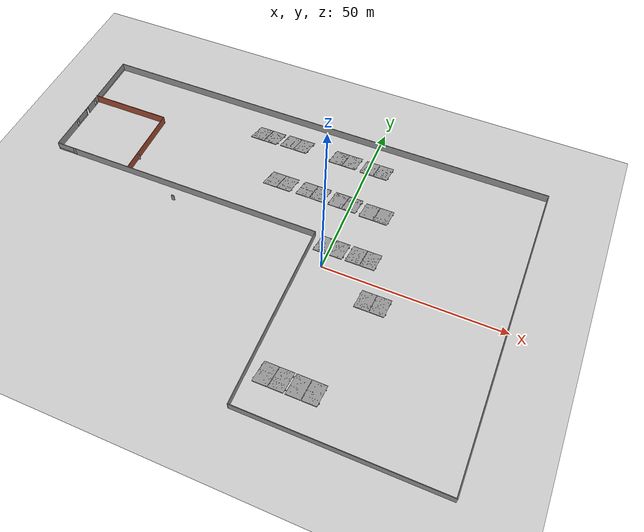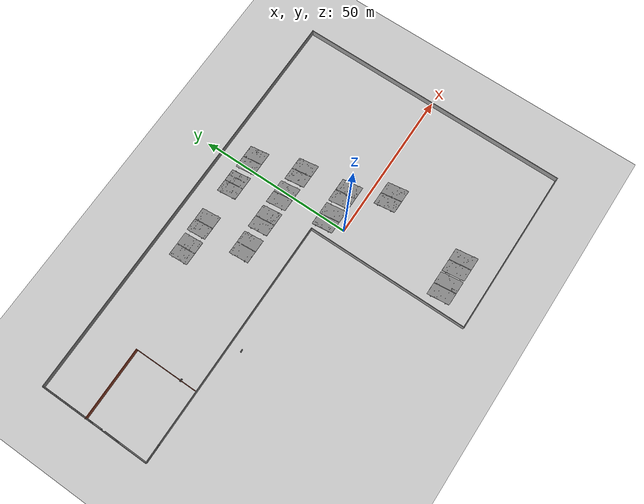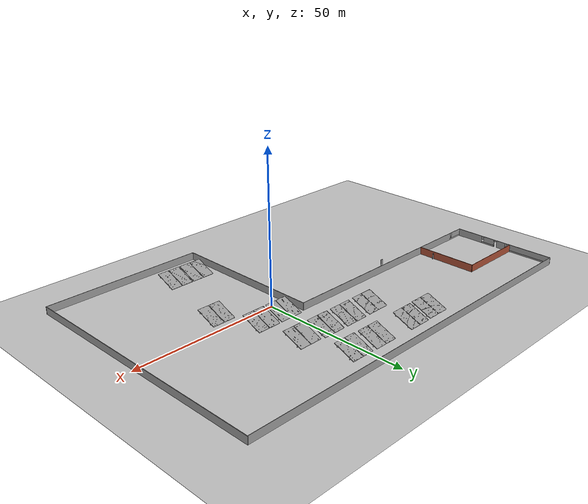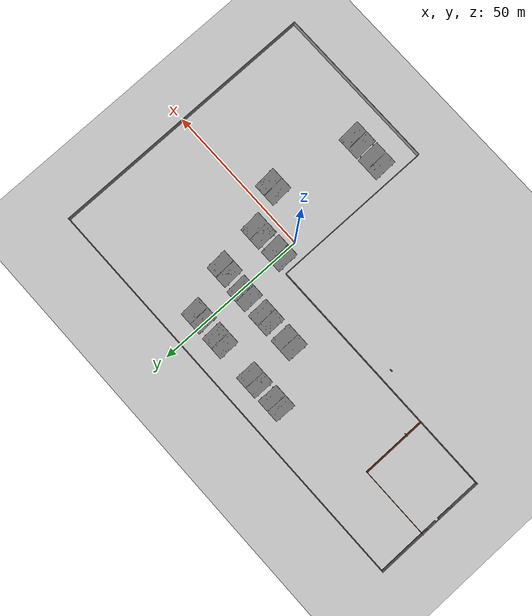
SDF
<sdf version="1.7">
 <world name="default">
  <model name="ground_plane">
   <static>1</static>
   <link name="link">
    <collision name="collision">
     <geometry><plane><normal>0 0 1</normal><size>100 100</size></plane></geometry>
     <surface>
      <contact><collide_bitmask>65535</collide_bitmask></contact>
      <friction><ode><mu>100</mu><mu2>50</mu2></ode></friction>
     </surface>
    </collision>
    <visual name="visual">
     <cast_shadows>0</cast_shadows>
     <geometry><plane><normal>0 0 1</normal><size>100 100</size></plane></geometry>
     <material>
      <script><uri>file://media/materials/scripts/gazebo.material</uri><name>Gazebo/Grey</name></script>
     </material>
    </visual>
   </link>
  </model>
  <model name="panelv4">
   <link name="link_0">
    <inertial>
     <mass>1</mass>
     <inertia>
      <ixx>0.166667</ixx>
      <ixy>0</ixy>
      <ixz>0</ixz>
      <iyy>0.166667</iyy>
      <iyz>0</iyz>
      <izz>0.166667</izz>
     </inertia>
    </inertial>
    <pose>0 -0 0 -0.398224 0 0</pose>
    <gravity>0</gravity>
    <visual name="visual">
     <geometry><mesh><uri>model://Panel/panelsolar.obj</uri><scale>0.05 0.05 0.05</scale></mesh></geometry>
     <material>
      <lighting>1</lighting>
      <script><uri>file://media/materials/scripts/gazebo.material</uri><name>Gazebo/Grey</name></script>
      <shader type="pixel"><normal_map>__default__</normal_map></shader>
      <ambient>0.3 0.3 0.3 1</ambient>
      <diffuse>0.7 0.7 0.7 1</diffuse>
      <specular>0.01 0.01 0.01 1</specular>
      <emissive>0 0 0 1</emissive>
     </material>
    </visual>
    <collision name="collision">
     <geometry><mesh><uri>model://Panel/panelsolar.obj</uri><scale>0.05 0.05 0.05</scale></mesh></geometry>
     <surface>
      <friction>
       <ode><mu>1</mu><mu2>1</mu2><fdir1>0 0 0</fdir1><slip1>0</slip1><slip2>0</slip2></ode>
       <torsional>
        <coefficient>1</coefficient>
        <patch_radius>0</patch_radius>
        <surface_radius>0</surface_radius>
        <use_patch_radius>1</use_patch_radius>
        <ode><slip>0</slip></ode>
       </torsional>
      </friction>
      <bounce><restitution_coefficient>0</restitution_coefficient><threshold>1e+06</threshold></bounce>
      <contact>
       <collide_without_contact>0</collide_without_contact>
       <collide_without_contact_bitmask>1</collide_without_contact_bitmask>
       <collide_bitmask>1</collide_bitmask>
       <ode>
        <soft_cfm>0</soft_cfm>
        <soft_erp>0.2</soft_erp>
        <kp>1e+13</kp>
        <kd>1</kd>
        <max_vel>0.01</max_vel>
        <min_depth>0</min_depth>
       </ode>
       <bullet>
        <split_impulse>1</split_impulse>
        <split_impulse_penetration_threshold>-0.01</split_impulse_penetration_threshold>
        <soft_cfm>0</soft_cfm>
        <soft_erp>0.2</soft_erp>
        <kp>1e+13</kp>
        <kd>1</kd>
       </bullet>
      </contact>
     </surface>
    </collision>
   </link>
   <static>1</static>
   <pose>9.55531 -34.0627 1.99863 0 -0 0</pose>
  </model>
  <model name="panelv4_clone_6">
   <link name="link_0">
    <inertial>
     <mass>1</mass>
     <inertia>
      <ixx>0.166667</ixx>
      <ixy>0</ixy>
      <ixz>0</ixz>
      <iyy>0.166667</iyy>
      <iyz>0</iyz>
      <izz>0.166667</izz>
     </inertia>
    </inertial>
    <pose>0 -0 0 -0.398224 0 0</pose>
    <gravity>0</gravity>
    <visual name="visual">
     <geometry><mesh><uri>model://Panel/panelsolar.obj</uri><scale>0.05 0.05 0.05</scale></mesh></geometry>
     <material>
      <lighting>1</lighting>
      <script><uri>file://media/materials/scripts/gazebo.material</uri><name>Gazebo/Grey</name></script>
      <shader type="pixel"><normal_map>__default__</normal_map></shader>
      <ambient>0.3 0.3 0.3 1</ambient>
      <diffuse>0.7 0.7 0.7 1</diffuse>
      <specular>0.01 0.01 0.01 1</specular>
      <emissive>0 0 0 1</emissive>
     </material>
    </visual>
    <collision name="collision">
     <geometry><mesh><uri>model://Panel/panelsolar.obj</uri><scale>0.05 0.05 0.05</scale></mesh></geometry>
     <surface>
      <friction>
       <ode><mu>1</mu><mu2>1</mu2><fdir1>0 0 0</fdir1><slip1>0</slip1><slip2>0</slip2></ode>
       <torsional>
        <coefficient>1</coefficient>
        <patch_radius>0</patch_radius>
        <surface_radius>0</surface_radius>
        <use_patch_radius>1</use_patch_radius>
        <ode><slip>0</slip></ode>
       </torsional>
      </friction>
      <bounce><restitution_coefficient>0</restitution_coefficient><threshold>1e+06</threshold></bounce>
      <contact>
       <collide_without_contact>0</collide_without_contact>
       <collide_without_contact_bitmask>1</collide_without_contact_bitmask>
       <collide_bitmask>1</collide_bitmask>
       <ode>
        <soft_cfm>0</soft_cfm>
        <soft_erp>0.2</soft_erp>
        <kp>1e+13</kp>
        <kd>1</kd>
        <max_vel>0.01</max_vel>
        <min_depth>0</min_depth>
       </ode>
       <bullet>
        <split_impulse>1</split_impulse>
        <split_impulse_penetration_threshold>-0.01</split_impulse_penetration_threshold>
        <soft_cfm>0</soft_cfm>
        <soft_erp>0.2</soft_erp>
        <kp>1e+13</kp>
        <kd>1</kd>
       </bullet>
      </contact>
     </surface>
    </collision>
   </link>
   <static>1</static>
   <pose>15.7973 -6.29418 1.99863 0 -0 0</pose>
  </model>
  <model name="panelv4_clone_11">
   <link name="link_0">
    <inertial>
     <mass>1</mass>
     <inertia>
      <ixx>0.166667</ixx>
      <ixy>0</ixy>
      <ixz>0</ixz>
      <iyy>0.166667</iyy>
      <iyz>0</iyz>
      <izz>0.166667</izz>
     </inertia>
    </inertial>
    <pose>0 -0 0 -0.398224 0 0</pose>
    <gravity>0</gravity>
    <visual name="visual">
     <geometry><mesh><uri>model://Panel/panelsolar.obj</uri><scale>0.05 0.05 0.05</scale></mesh></geometry>
     <material>
      <lighting>1</lighting>
      <script><uri>file://media/materials/scripts/gazebo.material</uri><name>Gazebo/Grey</name></script>
      <shader type="pixel"><normal_map>__default__</normal_map></shader>
      <ambient>0.3 0.3 0.3 1</ambient>
      <diffuse>0.7 0.7 0.7 1</diffuse>
      <specular>0.01 0.01 0.01 1</specular>
      <emissive>0 0 0 1</emissive>
     </material>
    </visual>
    <collision name="collision">
     <geometry><mesh><uri>model://Panel/panelsolar.obj</uri><scale>0.05 0.05 0.05</scale></mesh></geometry>
     <surface>
      <friction>
       <ode><mu>1</mu><mu2>1</mu2><fdir1>0 0 0</fdir1><slip1>0</slip1><slip2>0</slip2></ode>
       <torsional>
        <coefficient>1</coefficient>
        <patch_radius>0</patch_radius>
        <surface_radius>0</surface_radius>
        <use_patch_radius>1</use_patch_radius>
        <ode><slip>0</slip></ode>
       </torsional>
      </friction>
      <bounce><restitution_coefficient>0</restitution_coefficient><threshold>1e+06</threshold></bounce>
      <contact>
       <collide_without_contact>0</collide_without_contact>
       <collide_without_contact_bitmask>1</collide_without_contact_bitmask>
       <collide_bitmask>1</collide_bitmask>
       <ode>
        <soft_cfm>0</soft_cfm>
        <soft_erp>0.2</soft_erp>
        <kp>1e+13</kp>
        <kd>1</kd>
        <max_vel>0.01</max_vel>
        <min_depth>0</min_depth>
       </ode>
       <bullet>
        <split_impulse>1</split_impulse>
        <split_impulse_penetration_threshold>-0.01</split_impulse_penetration_threshold>
        <soft_cfm>0</soft_cfm>
        <soft_erp>0.2</soft_erp>
        <kp>1e+13</kp>
        <kd>1</kd>
       </bullet>
      </contact>
     </surface>
    </collision>
   </link>
   <static>1</static>
   <pose>1.14243 -34.0485 1.99863 0 -0 0</pose>
  </model>
  <model name="plantal">
   <pose>-18.1491 0.093328 0 0 -0 0</pose>
   <link name="Wall_0">
    <pose>-67.2498 33.625 0 0 -0 1.5708</pose>
    <visual name="Wall_0_Visual_0">
     <pose>-10.7622 0 1.25 0 -0 0</pose>
     <geometry><box><size>0.225674 0.15 2.5</size></box></geometry>
     <material>
      <script><uri>file://media/materials/scripts/gazebo.material</uri><name>Gazebo/Grey</name></script>
      <ambient>1 1 1 1</ambient>
     </material>
     <meta><layer>0</layer></meta>
    </visual>
    <collision name="Wall_0_Collision_0">
     <geometry><box><size>0.225674 0.15 2.5</size></box></geometry>
     <pose>-10.7622 0 1.25 0 -0 0</pose>
    </collision>
    <visual name="Wall_0_Visual_1">
     <pose>-8.1157 0 1.25 0 -0 0</pose>
     <geometry><box><size>3.26725 0.15 2.5</size></box></geometry>
     <material>
      <script><uri>file://media/materials/scripts/gazebo.material</uri><name>Gazebo/Grey</name></script>
      <ambient>1 1 1 1</ambient>
     </material>
     <meta><layer>0</layer></meta>
    </visual>
    <collision name="Wall_0_Collision_1">
     <geometry><box><size>3.26725 0.15 2.5</size></box></geometry>
     <pose>-8.1157 0 1.25 0 -0 0</pose>
    </collision>
    <visual name="Wall_0_Visual_2">
     <pose>2.19646 0 0.25 0 -0 0</pose>
     <geometry><box><size>17.3571 0.15 0.5</size></box></geometry>
     <material>
      <script><uri>file://media/materials/scripts/gazebo.material</uri><name>Gazebo/Grey</name></script>
      <ambient>1 1 1 1</ambient>
     </material>
     <meta><layer>0</layer></meta>
    </visual>
    <collision name="Wall_0_Collision_2">
     <geometry><box><size>17.3571 0.15 0.5</size></box></geometry>
     <pose>2.19646 0 0.25 0 -0 0</pose>
    </collision>
    <visual name="Wall_0_Visual_3">
     <pose>2.59646 0 1.5 0 -0 0</pose>
     <geometry><box><size>16.5571 0.15 2</size></box></geometry>
     <material>
      <script><uri>file://media/materials/scripts/gazebo.material</uri><name>Gazebo/Grey</name></script>
      <ambient>1 1 1 1</ambient>
     </material>
     <meta><layer>0</layer></meta>
    </visual>
    <collision name="Wall_0_Collision_3">
     <geometry><box><size>16.5571 0.15 2</size></box></geometry>
     <pose>2.59646 0 1.5 0 -0 0</pose>
    </collision>
    <visual name="Wall_0_Visual_4">
     <pose>-6.08208 0 1.9 0 -0 0</pose>
     <geometry><box><size>0.8 0.15 1.2</size></box></geometry>
     <material>
      <script><uri>file://media/materials/scripts/gazebo.material</uri><name>Gazebo/Grey</name></script>
      <ambient>1 1 1 1</ambient>
     </material>
     <meta><layer>0</layer></meta>
    </visual>
    <collision name="Wall_0_Collision_4">
     <geometry><box><size>0.8 0.15 1.2</size></box></geometry>
     <pose>-6.08208 0 1.9 0 -0 0</pose>
    </collision>
    <visual name="Wall_0_Visual_5">
     <pose>-10.1993 0 2.25 0 -0 0</pose>
     <geometry><box><size>0.9 0.15 0.5</size></box></geometry>
     <material>
      <script><uri>file://media/materials/scripts/gazebo.material</uri><name>Gazebo/Grey</name></script>
      <ambient>1 1 1 1</ambient>
     </material>
     <meta><layer>0</layer></meta>
    </visual>
    <collision name="Wall_0_Collision_5">
     <geometry><box><size>0.9 0.15 0.5</size></box></geometry>
     <pose>-10.1993 0 2.25 0 -0 0</pose>
    </collision>
   </link>
   <link name="Wall_1">
    <collision name="Wall_1_Collision">
     <geometry><box><size>134.75 0.15 2.5</size></box></geometry>
     <pose>0 0 1.25 0 -0 0</pose>
    </collision>
    <visual name="Wall_1_Visual">
     <pose>0 0 1.25 0 -0 0</pose>
     <geometry><box><size>134.75 0.15 2.5</size></box></geometry>
     <material>
      <script><uri>file://media/materials/scripts/gazebo.material</uri><name>Gazebo/Grey</name></script>
      <ambient>1 1 1 1</ambient>
     </material>
     <meta><layer>0</layer></meta>
    </visual>
    <pose>0.050249 44.425 0 0 -0 0</pose>
   </link>
   <link name="Wall_2">
    <collision name="Wall_2_Collision">
     <geometry><box><size>89 0.15 2.5</size></box></geometry>
     <pose>0 0 1.25 0 -0 0</pose>
    </collision>
    <visual name="Wall_2_Visual">
     <pose>0 0 1.25 0 -0 0</pose>
     <geometry><box><size>89 0.15 2.5</size></box></geometry>
     <material>
      <script><uri>file://media/materials/scripts/gazebo.material</uri><name>Gazebo/Grey</name></script>
      <ambient>1 1 1 1</ambient>
     </material>
     <meta><layer>0</layer></meta>
    </visual>
    <pose>67.3502 2e-06 0 0 -0 -1.5708</pose>
   </link>
   <link name="Wall_3">
    <collision name="Wall_3_Collision">
     <geometry><box><size>54.5 0.15 2.5</size></box></geometry>
     <pose>0 0 1.25 0 -0 0</pose>
    </collision>
    <visual name="Wall_3_Visual">
     <pose>0 0 1.25 0 -0 0</pose>
     <geometry><box><size>54.5 0.15 2.5</size></box></geometry>
     <material>
      <script><uri>file://media/materials/scripts/gazebo.material</uri><name>Gazebo/Grey</name></script>
      <ambient>1 1 1 1</ambient>
     </material>
     <meta><layer>0</layer></meta>
    </visual>
    <pose>40.1752 -44.425 0 0 -0 3.14159</pose>
   </link>
   <link name="Wall_4">
    <collision name="Wall_4_Collision">
     <geometry><box><size>52.75 0.15 2.5</size></box></geometry>
     <pose>0 0 1.25 0 -0 0</pose>
    </collision>
    <visual name="Wall_4_Visual">
     <pose>0 0 1.25 0 -0 0</pose>
     <geometry><box><size>52.75 0.15 2.5</size></box></geometry>
     <material>
      <script><uri>file://media/materials/scripts/gazebo.material</uri><name>Gazebo/Grey</name></script>
      <ambient>1 1 1 1</ambient>
     </material>
     <meta><layer>0</layer></meta>
    </visual>
    <pose>13.0002 -18.125 0 0 -0 1.5708</pose>
   </link>
   <link name="Wall_5">
    <pose>-27.1747 8.175 0 0 -0 3.14159</pose>
    <visual name="Wall_5_Visual_0">
     <pose>-2.95605 0 1.25 0 -0 0</pose>
     <geometry><box><size>74.5879 0.15 2.5</size></box></geometry>
     <material>
      <script><uri>file://media/materials/scripts/gazebo.material</uri><name>Gazebo/Grey</name></script>
      <ambient>1 1 1 1</ambient>
     </material>
     <meta><layer>0</layer></meta>
    </visual>
    <collision name="Wall_5_Collision_0">
     <geometry><box><size>74.5879 0.15 2.5</size></box></geometry>
     <pose>-2.95605 0 1.25 0 -0 0</pose>
    </collision>
    <visual name="Wall_5_Visual_1">
     <pose>37.2939 0 0.25 0 -0 0</pose>
     <geometry><box><size>5.9121 0.15 0.5</size></box></geometry>
     <material>
      <script><uri>file://media/materials/scripts/gazebo.material</uri><name>Gazebo/Grey</name></script>
      <ambient>1 1 1 1</ambient>
     </material>
     <meta><layer>0</layer></meta>
    </visual>
    <collision name="Wall_5_Collision_1">
     <geometry><box><size>5.9121 0.15 0.5</size></box></geometry>
     <pose>37.2939 0 0.25 0 -0 0</pose>
    </collision>
    <visual name="Wall_5_Visual_2">
     <pose>37.6939 0 1.5 0 -0 0</pose>
     <geometry><box><size>5.1121 0.15 2</size></box></geometry>
     <material>
      <script><uri>file://media/materials/scripts/gazebo.material</uri><name>Gazebo/Grey</name></script>
      <ambient>1 1 1 1</ambient>
     </material>
     <meta><layer>0</layer></meta>
    </visual>
    <collision name="Wall_5_Collision_2">
     <geometry><box><size>5.1121 0.15 2</size></box></geometry>
     <pose>37.6939 0 1.5 0 -0 0</pose>
    </collision>
    <visual name="Wall_5_Visual_3">
     <pose>34.7379 0 1.9 0 -0 0</pose>
     <geometry><box><size>0.8 0.15 1.2</size></box></geometry>
     <material>
      <script><uri>file://media/materials/scripts/gazebo.material</uri><name>Gazebo/Grey</name></script>
      <ambient>1 1 1 1</ambient>
     </material>
     <meta><layer>0</layer></meta>
    </visual>
    <collision name="Wall_5_Collision_3">
     <geometry><box><size>0.8 0.15 1.2</size></box></geometry>
     <pose>34.7379 0 1.9 0 -0 0</pose>
    </collision>
   </link>
   <link name="Wall_6">
    <pose>-67.2998 15.5 0 0 -0 1.56397</pose>
    <visual name="Wall_6_Visual_0">
     <pose>-2.55086 0 1.25 0 -0 0</pose>
     <geometry><box><size>9.69862 0.15 2.5</size></box></geometry>
     <material>
      <script><uri>file://media/materials/scripts/gazebo.material</uri><name>Gazebo/Grey</name></script>
      <ambient>1 1 1 1</ambient>
     </material>
     <meta><layer>0</layer></meta>
    </visual>
    <collision name="Wall_6_Collision_0">
     <geometry><box><size>9.69862 0.15 2.5</size></box></geometry>
     <pose>-2.55086 0 1.25 0 -0 0</pose>
    </collision>
    <visual name="Wall_6_Visual_1">
     <pose>4.84931 0 0.25 0 -0 0</pose>
     <geometry><box><size>5.10172 0.15 0.5</size></box></geometry>
     <material>
      <script><uri>file://media/materials/scripts/gazebo.material</uri><name>Gazebo/Grey</name></script>
      <ambient>1 1 1 1</ambient>
     </material>
     <meta><layer>0</layer></meta>
    </visual>
    <collision name="Wall_6_Collision_1">
     <geometry><box><size>5.10172 0.15 0.5</size></box></geometry>
     <pose>4.84931 0 0.25 0 -0 0</pose>
    </collision>
    <visual name="Wall_6_Visual_2">
     <pose>5.24931 0 1.5 0 -0 0</pose>
     <geometry><box><size>4.30172 0.15 2</size></box></geometry>
     <material>
      <script><uri>file://media/materials/scripts/gazebo.material</uri><name>Gazebo/Grey</name></script>
      <ambient>1 1 1 1</ambient>
     </material>
     <meta><layer>0</layer></meta>
    </visual>
    <collision name="Wall_6_Collision_2">
     <geometry><box><size>4.30172 0.15 2</size></box></geometry>
     <pose>5.24931 0 1.5 0 -0 0</pose>
    </collision>
    <visual name="Wall_6_Visual_3">
     <pose>2.69845 0 1.9 0 -0 0</pose>
     <geometry><box><size>0.8 0.15 1.2</size></box></geometry>
     <material>
      <script><uri>file://media/materials/scripts/gazebo.material</uri><name>Gazebo/Grey</name></script>
      <ambient>1 1 1 1</ambient>
     </material>
     <meta><layer>0</layer></meta>
    </visual>
    <collision name="Wall_6_Collision_3">
     <geometry><box><size>0.8 0.15 1.2</size></box></geometry>
     <pose>2.69845 0 1.9 0 -0 0</pose>
    </collision>
   </link>
   <static>1</static>
  </model>
  <model name="panelv4_clone_6_clone_1">
   <link name="link_0">
    <inertial>
     <mass>1</mass>
     <inertia>
      <ixx>0.166667</ixx>
      <ixy>0</ixy>
      <ixz>0</ixz>
      <iyy>0.166667</iyy>
      <iyz>0</iyz>
      <izz>0.166667</izz>
     </inertia>
    </inertial>
    <pose>0 -0 0 -0.398224 0 0</pose>
    <gravity>0</gravity>
    <visual name="visual">
     <geometry><mesh><uri>model://Panel/panelsolar.obj</uri><scale>0.05 0.05 0.05</scale></mesh></geometry>
     <material>
      <lighting>1</lighting>
      <script><uri>file://media/materials/scripts/gazebo.material</uri><name>Gazebo/Grey</name></script>
      <shader type="pixel"><normal_map>__default__</normal_map></shader>
      <ambient>0.3 0.3 0.3 1</ambient>
      <diffuse>0.7 0.7 0.7 1</diffuse>
      <specular>0.01 0.01 0.01 1</specular>
      <emissive>0 0 0 1</emissive>
     </material>
    </visual>
    <collision name="collision">
     <geometry><mesh><uri>model://Panel/panelsolar.obj</uri><scale>0.05 0.05 0.05</scale></mesh></geometry>
     <surface>
      <friction>
       <ode><mu>1</mu><mu2>1</mu2><fdir1>0 0 0</fdir1><slip1>0</slip1><slip2>0</slip2></ode>
       <torsional>
        <coefficient>1</coefficient>
        <patch_radius>0</patch_radius>
        <surface_radius>0</surface_radius>
        <use_patch_radius>1</use_patch_radius>
        <ode><slip>0</slip></ode>
       </torsional>
      </friction>
      <bounce><restitution_coefficient>0</restitution_coefficient><threshold>1e+06</threshold></bounce>
      <contact>
       <collide_without_contact>0</collide_without_contact>
       <collide_without_contact_bitmask>1</collide_without_contact_bitmask>
       <collide_bitmask>1</collide_bitmask>
       <ode>
        <soft_cfm>0</soft_cfm>
        <soft_erp>0.2</soft_erp>
        <kp>1e+13</kp>
        <kd>1</kd>
        <max_vel>0.01</max_vel>
        <min_depth>0</min_depth>
       </ode>
       <bullet>
        <split_impulse>1</split_impulse>
        <split_impulse_penetration_threshold>-0.01</split_impulse_penetration_threshold>
        <soft_cfm>0</soft_cfm>
        <soft_erp>0.2</soft_erp>
        <kp>1e+13</kp>
        <kd>1</kd>
       </bullet>
      </contact>
     </surface>
    </collision>
   </link>
   <static>1</static>
   <pose>8.9467 5.58939 1.99863 0 -0 0</pose>
  </model>
  <model name="panelv4_clone_6_clone_2">
   <link name="link_0">
    <inertial>
     <mass>1</mass>
     <inertia>
      <ixx>0.166667</ixx>
      <ixy>0</ixy>
      <ixz>0</ixz>
      <iyy>0.166667</iyy>
      <iyz>0</iyz>
      <izz>0.166667</izz>
     </inertia>
    </inertial>
    <pose>0 -0 0 -0.398224 0 0</pose>
    <gravity>0</gravity>
    <visual name="visual">
     <geometry><mesh><uri>model://Panel/panelsolar.obj</uri><scale>0.05 0.05 0.05</scale></mesh></geometry>
     <material>
      <lighting>1</lighting>
      <script><uri>file://media/materials/scripts/gazebo.material</uri><name>Gazebo/Grey</name></script>
      <shader type="pixel"><normal_map>__default__</normal_map></shader>
      <ambient>0.3 0.3 0.3 1</ambient>
      <diffuse>0.7 0.7 0.7 1</diffuse>
      <specular>0.01 0.01 0.01 1</specular>
      <emissive>0 0 0 1</emissive>
     </material>
    </visual>
    <collision name="collision">
     <geometry><mesh><uri>model://Panel/panelsolar.obj</uri><scale>0.05 0.05 0.05</scale></mesh></geometry>
     <surface>
      <friction>
       <ode><mu>1</mu><mu2>1</mu2><fdir1>0 0 0</fdir1><slip1>0</slip1><slip2>0</slip2></ode>
       <torsional>
        <coefficient>1</coefficient>
        <patch_radius>0</patch_radius>
        <surface_radius>0</surface_radius>
        <use_patch_radius>1</use_patch_radius>
        <ode><slip>0</slip></ode>
       </torsional>
      </friction>
      <bounce><restitution_coefficient>0</restitution_coefficient><threshold>1e+06</threshold></bounce>
      <contact>
       <collide_without_contact>0</collide_without_contact>
       <collide_without_contact_bitmask>1</collide_without_contact_bitmask>
       <collide_bitmask>1</collide_bitmask>
       <ode>
        <soft_cfm>0</soft_cfm>
        <soft_erp>0.2</soft_erp>
        <kp>1e+13</kp>
        <kd>1</kd>
        <max_vel>0.01</max_vel>
        <min_depth>0</min_depth>
       </ode>
       <bullet>
        <split_impulse>1</split_impulse>
        <split_impulse_penetration_threshold>-0.01</split_impulse_penetration_threshold>
        <soft_cfm>0</soft_cfm>
        <soft_erp>0.2</soft_erp>
        <kp>1e+13</kp>
        <kd>1</kd>
       </bullet>
      </contact>
     </surface>
    </collision>
   </link>
   <static>1</static>
   <pose>0.066594 5.54411 1.99863 0 -0 0</pose>
  </model>
  <model name="panelv4_clone_6_clone_0_clone_3">
   <link name="link_0">
    <inertial>
     <mass>1</mass>
     <inertia>
      <ixx>0.166667</ixx>
      <ixy>0</ixy>
      <ixz>0</ixz>
      <iyy>0.166667</iyy>
      <iyz>0</iyz>
      <izz>0.166667</izz>
     </inertia>
    </inertial>
    <pose>0 -0 0 -0.398224 0 0</pose>
    <gravity>0</gravity>
    <visual name="visual">
     <geometry><mesh><uri>model://Panel/panelsolar.obj</uri><scale>0.05 0.05 0.05</scale></mesh></geometry>
     <material>
      <lighting>1</lighting>
      <script><uri>file://media/materials/scripts/gazebo.material</uri><name>Gazebo/Grey</name></script>
      <shader type="pixel"><normal_map>__default__</normal_map></shader>
      <ambient>0.3 0.3 0.3 1</ambient>
      <diffuse>0.7 0.7 0.7 1</diffuse>
      <specular>0.01 0.01 0.01 1</specular>
      <emissive>0 0 0 1</emissive>
     </material>
    </visual>
    <collision name="collision">
     <geometry><mesh><uri>model://Panel/panelsolar.obj</uri><scale>0.05 0.05 0.05</scale></mesh></geometry>
     <surface>
      <friction>
       <ode><mu>1</mu><mu2>1</mu2><fdir1>0 0 0</fdir1><slip1>0</slip1><slip2>0</slip2></ode>
       <torsional>
        <coefficient>1</coefficient>
        <patch_radius>0</patch_radius>
        <surface_radius>0</surface_radius>
        <use_patch_radius>1</use_patch_radius>
        <ode><slip>0</slip></ode>
       </torsional>
      </friction>
      <bounce><restitution_coefficient>0</restitution_coefficient><threshold>1e+06</threshold></bounce>
      <contact>
       <collide_without_contact>0</collide_without_contact>
       <collide_without_contact_bitmask>1</collide_without_contact_bitmask>
       <collide_bitmask>1</collide_bitmask>
       <ode>
        <soft_cfm>0</soft_cfm>
        <soft_erp>0.2</soft_erp>
        <kp>1e+13</kp>
        <kd>1</kd>
        <max_vel>0.01</max_vel>
        <min_depth>0</min_depth>
       </ode>
       <bullet>
        <split_impulse>1</split_impulse>
        <split_impulse_penetration_threshold>-0.01</split_impulse_penetration_threshold>
        <soft_cfm>0</soft_cfm>
        <soft_erp>0.2</soft_erp>
        <kp>1e+13</kp>
        <kd>1</kd>
       </bullet>
      </contact>
     </surface>
    </collision>
   </link>
   <static>1</static>
   <pose>7.21213 20.3756 1.99863 0 -0 0</pose>
  </model>
  <model name="panelv4_clone_6_clone_0_clone_4">
   <link name="link_0">
    <inertial>
     <mass>1</mass>
     <inertia>
      <ixx>0.166667</ixx>
      <ixy>0</ixy>
      <ixz>0</ixz>
      <iyy>0.166667</iyy>
      <iyz>0</iyz>
      <izz>0.166667</izz>
     </inertia>
    </inertial>
    <pose>0 -0 0 -0.398224 0 0</pose>
    <gravity>0</gravity>
    <visual name="visual">
     <geometry><mesh><uri>model://Panel/panelsolar.obj</uri><scale>0.05 0.05 0.05</scale></mesh></geometry>
     <material>
      <lighting>1</lighting>
      <script><uri>file://media/materials/scripts/gazebo.material</uri><name>Gazebo/Grey</name></script>
      <shader type="pixel"><normal_map>__default__</normal_map></shader>
      <ambient>0.3 0.3 0.3 1</ambient>
      <diffuse>0.7 0.7 0.7 1</diffuse>
      <specular>0.01 0.01 0.01 1</specular>
      <emissive>0 0 0 1</emissive>
     </material>
    </visual>
    <collision name="collision">
     <geometry><mesh><uri>model://Panel/panelsolar.obj</uri><scale>0.05 0.05 0.05</scale></mesh></geometry>
     <surface>
      <friction>
       <ode><mu>1</mu><mu2>1</mu2><fdir1>0 0 0</fdir1><slip1>0</slip1><slip2>0</slip2></ode>
       <torsional>
        <coefficient>1</coefficient>
        <patch_radius>0</patch_radius>
        <surface_radius>0</surface_radius>
        <use_patch_radius>1</use_patch_radius>
        <ode><slip>0</slip></ode>
       </torsional>
      </friction>
      <bounce><restitution_coefficient>0</restitution_coefficient><threshold>1e+06</threshold></bounce>
      <contact>
       <collide_without_contact>0</collide_without_contact>
       <collide_without_contact_bitmask>1</collide_without_contact_bitmask>
       <collide_bitmask>1</collide_bitmask>
       <ode>
        <soft_cfm>0</soft_cfm>
        <soft_erp>0.2</soft_erp>
        <kp>1e+13</kp>
        <kd>1</kd>
        <max_vel>0.01</max_vel>
        <min_depth>0</min_depth>
       </ode>
       <bullet>
        <split_impulse>1</split_impulse>
        <split_impulse_penetration_threshold>-0.01</split_impulse_penetration_threshold>
        <soft_cfm>0</soft_cfm>
        <soft_erp>0.2</soft_erp>
        <kp>1e+13</kp>
        <kd>1</kd>
       </bullet>
      </contact>
     </surface>
    </collision>
   </link>
   <static>1</static>
   <pose>-1.94093 20.8153 1.99863 0 -0 0</pose>
  </model>
  <model name="panelv4_clone_6_clone_0_clone_5">
   <link name="link_0">
    <inertial>
     <mass>1</mass>
     <inertia>
      <ixx>0.166667</ixx>
      <ixy>0</ixy>
      <ixz>0</ixz>
      <iyy>0.166667</iyy>
      <iyz>0</iyz>
      <izz>0.166667</izz>
     </inertia>
    </inertial>
    <pose>0 -0 0 -0.398224 0 0</pose>
    <gravity>0</gravity>
    <visual name="visual">
     <geometry><mesh><uri>model://Panel/panelsolar.obj</uri><scale>0.05 0.05 0.05</scale></mesh></geometry>
     <material>
      <lighting>1</lighting>
      <script><uri>file://media/materials/scripts/gazebo.material</uri><name>Gazebo/Grey</name></script>
      <shader type="pixel"><normal_map>__default__</normal_map></shader>
      <ambient>0.3 0.3 0.3 1</ambient>
      <diffuse>0.7 0.7 0.7 1</diffuse>
      <specular>0.01 0.01 0.01 1</specular>
      <emissive>0 0 0 1</emissive>
     </material>
    </visual>
    <collision name="collision">
     <geometry><mesh><uri>model://Panel/panelsolar.obj</uri><scale>0.05 0.05 0.05</scale></mesh></geometry>
     <surface>
      <friction>
       <ode><mu>1</mu><mu2>1</mu2><fdir1>0 0 0</fdir1><slip1>0</slip1><slip2>0</slip2></ode>
       <torsional>
        <coefficient>1</coefficient>
        <patch_radius>0</patch_radius>
        <surface_radius>0</surface_radius>
        <use_patch_radius>1</use_patch_radius>
        <ode><slip>0</slip></ode>
       </torsional>
      </friction>
      <bounce><restitution_coefficient>0</restitution_coefficient><threshold>1e+06</threshold></bounce>
      <contact>
       <collide_without_contact>0</collide_without_contact>
       <collide_without_contact_bitmask>1</collide_without_contact_bitmask>
       <collide_bitmask>1</collide_bitmask>
       <ode>
        <soft_cfm>0</soft_cfm>
        <soft_erp>0.2</soft_erp>
        <kp>1e+13</kp>
        <kd>1</kd>
        <max_vel>0.01</max_vel>
        <min_depth>0</min_depth>
       </ode>
       <bullet>
        <split_impulse>1</split_impulse>
        <split_impulse_penetration_threshold>-0.01</split_impulse_penetration_threshold>
        <soft_cfm>0</soft_cfm>
        <soft_erp>0.2</soft_erp>
        <kp>1e+13</kp>
        <kd>1</kd>
       </bullet>
      </contact>
     </surface>
    </collision>
   </link>
   <static>1</static>
   <pose>-11.3436 20.8542 1.99863 0 -0 0</pose>
  </model>
  <model name="panelv4_clone_6_clone_0_clone_6">
   <link name="link_0">
    <inertial>
     <mass>1</mass>
     <inertia>
      <ixx>0.166667</ixx>
      <ixy>0</ixy>
      <ixz>0</ixz>
      <iyy>0.166667</iyy>
      <iyz>0</iyz>
      <izz>0.166667</izz>
     </inertia>
    </inertial>
    <pose>0 -0 0 -0.398224 0 0</pose>
    <gravity>0</gravity>
    <visual name="visual">
     <geometry><mesh><uri>model://Panel/panelsolar.obj</uri><scale>0.05 0.05 0.05</scale></mesh></geometry>
     <material>
      <lighting>1</lighting>
      <script><uri>file://media/materials/scripts/gazebo.material</uri><name>Gazebo/Grey</name></script>
      <shader type="pixel"><normal_map>__default__</normal_map></shader>
      <ambient>0.3 0.3 0.3 1</ambient>
      <diffuse>0.7 0.7 0.7 1</diffuse>
      <specular>0.01 0.01 0.01 1</specular>
      <emissive>0 0 0 1</emissive>
     </material>
    </visual>
    <collision name="collision">
     <geometry><mesh><uri>model://Panel/panelsolar.obj</uri><scale>0.05 0.05 0.05</scale></mesh></geometry>
     <surface>
      <friction>
       <ode><mu>1</mu><mu2>1</mu2><fdir1>0 0 0</fdir1><slip1>0</slip1><slip2>0</slip2></ode>
       <torsional>
        <coefficient>1</coefficient>
        <patch_radius>0</patch_radius>
        <surface_radius>0</surface_radius>
        <use_patch_radius>1</use_patch_radius>
        <ode><slip>0</slip></ode>
       </torsional>
      </friction>
      <bounce><restitution_coefficient>0</restitution_coefficient><threshold>1e+06</threshold></bounce>
      <contact>
       <collide_without_contact>0</collide_without_contact>
       <collide_without_contact_bitmask>1</collide_without_contact_bitmask>
       <collide_bitmask>1</collide_bitmask>
       <ode>
        <soft_cfm>0</soft_cfm>
        <soft_erp>0.2</soft_erp>
        <kp>1e+13</kp>
        <kd>1</kd>
        <max_vel>0.01</max_vel>
        <min_depth>0</min_depth>
       </ode>
       <bullet>
        <split_impulse>1</split_impulse>
        <split_impulse_penetration_threshold>-0.01</split_impulse_penetration_threshold>
        <soft_cfm>0</soft_cfm>
        <soft_erp>0.2</soft_erp>
        <kp>1e+13</kp>
        <kd>1</kd>
       </bullet>
      </contact>
     </surface>
    </collision>
   </link>
   <static>1</static>
   <pose>-21.0754 20.771 1.99863 0 -0 0</pose>
  </model>
  <model name="Untitled">
   <pose>-16.8765 18.7696 0 0 -0 0</pose>
   <link name="Door_3">
    <collision name="Door_3_Collision">
     <geometry><box><size>0.9 0.17 2</size></box></geometry>
     <pose>0 0 1 0 -0 0</pose>
    </collision>
    <visual name="Door_3_Visual">
     <pose>0 0 1 0 -0 0</pose>
     <geometry><box><size>0.9 0.17 2</size></box></geometry>
     <material>
      <script><uri>file://media/materials/scripts/gazebo.material</uri><name>Gazebo/Grey</name></script>
     </material>
    </visual>
    <pose>-29.1748 -14.2606 0 0 -0 0</pose>
   </link>
   <link name="Door_4">
    <collision name="Door_4_Collision">
     <geometry><box><size>0.9 0.17 2</size></box></geometry>
     <pose>0 0 1 0 -0 0</pose>
    </collision>
    <visual name="Door_4_Visual">
     <pose>0 0 1 0 -0 0</pose>
     <geometry><box><size>0.9 0.17 2</size></box></geometry>
     <material>
      <script><uri>file://media/materials/scripts/gazebo.material</uri><name>Gazebo/Grey</name></script>
     </material>
    </visual>
    <pose>-45.4363 -4.94987 0 0 -0 0</pose>
   </link>
   <link name="Wall_56">
    <collision name="Wall_56_Collision">
     <geometry><box><size>21 0.15 2.5</size></box></geometry>
     <pose>0 0 1.25 0 -0 0</pose>
    </collision>
    <visual name="Wall_56_Visual">
     <pose>0 0 1.25 0 -0 0</pose>
     <geometry><box><size>21 0.15 2.5</size></box></geometry>
     <material>
      <script><uri>file://media/materials/scripts/gazebo.material</uri><name>Gazebo/Bricks</name></script>
      <ambient>1 1 1 1</ambient>
     </material>
     <meta><layer>0</layer></meta>
    </visual>
    <pose>-45.564 0 0 0 -0 1.5708</pose>
   </link>
   <link name="Wall_57">
    <collision name="Wall_57_Collision">
     <geometry><box><size>23.25 0.15 2.5</size></box></geometry>
     <pose>0 0 1.25 0 -0 0</pose>
    </collision>
    <visual name="Wall_57_Visual">
     <pose>0 0 1.25 0 -0 0</pose>
     <geometry><box><size>23.25 0.15 2.5</size></box></geometry>
     <material>
      <script><uri>file://media/materials/scripts/gazebo.material</uri><name>Gazebo/Bricks</name></script>
      <ambient>1 1 1 1</ambient>
     </material>
     <meta><layer>0</layer></meta>
    </visual>
    <pose>-57.114 10.425 0 0 -0 3.14159</pose>
   </link>
   <static>1</static>
  </model>
  <model name="panelv4_clone_6_clone_0_clone_clone_1">
   <link name="link_0">
    <inertial>
     <mass>1</mass>
     <inertia>
      <ixx>0.166667</ixx>
      <ixy>0</ixy>
      <ixz>0</ixz>
      <iyy>0.166667</iyy>
      <iyz>0</iyz>
      <izz>0.166667</izz>
     </inertia>
    </inertial>
    <pose>0 -0 0 -0.398224 0 0</pose>
    <gravity>0</gravity>
    <visual name="visual">
     <geometry><mesh><uri>model://Panel/panelsolar.obj</uri><scale>0.05 0.05 0.05</scale></mesh></geometry>
     <material>
      <lighting>1</lighting>
      <script><uri>file://media/materials/scripts/gazebo.material</uri><name>Gazebo/Grey</name></script>
      <shader type="pixel"><normal_map>__default__</normal_map></shader>
      <ambient>0.3 0.3 0.3 1</ambient>
      <diffuse>0.7 0.7 0.7 1</diffuse>
      <specular>0.01 0.01 0.01 1</specular>
      <emissive>0 0 0 1</emissive>
     </material>
    </visual>
    <collision name="collision">
     <geometry><mesh><uri>model://Panel/panelsolar.obj</uri><scale>0.05 0.05 0.05</scale></mesh></geometry>
     <surface>
      <friction>
       <ode><mu>1</mu><mu2>1</mu2><fdir1>0 0 0</fdir1><slip1>0</slip1><slip2>0</slip2></ode>
       <torsional>
        <coefficient>1</coefficient>
        <patch_radius>0</patch_radius>
        <surface_radius>0</surface_radius>
        <use_patch_radius>1</use_patch_radius>
        <ode><slip>0</slip></ode>
       </torsional>
      </friction>
      <bounce><restitution_coefficient>0</restitution_coefficient><threshold>1e+06</threshold></bounce>
      <contact>
       <collide_without_contact>0</collide_without_contact>
       <collide_without_contact_bitmask>1</collide_without_contact_bitmask>
       <collide_bitmask>1</collide_bitmask>
       <ode>
        <soft_cfm>0</soft_cfm>
        <soft_erp>0.2</soft_erp>
        <kp>1e+13</kp>
        <kd>1</kd>
        <max_vel>0.01</max_vel>
        <min_depth>0</min_depth>
       </ode>
       <bullet>
        <split_impulse>1</split_impulse>
        <split_impulse_penetration_threshold>-0.01</split_impulse_penetration_threshold>
        <soft_cfm>0</soft_cfm>
        <soft_erp>0.2</soft_erp>
        <kp>1e+13</kp>
        <kd>1</kd>
       </bullet>
      </contact>
     </surface>
    </collision>
   </link>
   <static>1</static>
   <pose>2.06742 34.9195 1.99863 0 -0 0</pose>
  </model>
  <model name="panelv4_clone_6_clone_0_clone_clone_2">
   <link name="link_0">
    <inertial>
     <mass>1</mass>
     <inertia>
      <ixx>0.166667</ixx>
      <ixy>0</ixy>
      <ixz>0</ixz>
      <iyy>0.166667</iyy>
      <iyz>0</iyz>
      <izz>0.166667</izz>
     </inertia>
    </inertial>
    <pose>0 -0 0 -0.398224 0 0</pose>
    <gravity>0</gravity>
    <visual name="visual">
     <geometry><mesh><uri>model://Panel/panelsolar.obj</uri><scale>0.05 0.05 0.05</scale></mesh></geometry>
     <material>
      <lighting>1</lighting>
      <script><uri>file://media/materials/scripts/gazebo.material</uri><name>Gazebo/Grey</name></script>
      <shader type="pixel"><normal_map>__default__</normal_map></shader>
      <ambient>0.3 0.3 0.3 1</ambient>
      <diffuse>0.7 0.7 0.7 1</diffuse>
      <specular>0.01 0.01 0.01 1</specular>
      <emissive>0 0 0 1</emissive>
     </material>
    </visual>
    <collision name="collision">
     <geometry><mesh><uri>model://Panel/panelsolar.obj</uri><scale>0.05 0.05 0.05</scale></mesh></geometry>
     <surface>
      <friction>
       <ode><mu>1</mu><mu2>1</mu2><fdir1>0 0 0</fdir1><slip1>0</slip1><slip2>0</slip2></ode>
       <torsional>
        <coefficient>1</coefficient>
        <patch_radius>0</patch_radius>
        <surface_radius>0</surface_radius>
        <use_patch_radius>1</use_patch_radius>
        <ode><slip>0</slip></ode>
       </torsional>
      </friction>
      <bounce><restitution_coefficient>0</restitution_coefficient><threshold>1e+06</threshold></bounce>
      <contact>
       <collide_without_contact>0</collide_without_contact>
       <collide_without_contact_bitmask>1</collide_without_contact_bitmask>
       <collide_bitmask>1</collide_bitmask>
       <ode>
        <soft_cfm>0</soft_cfm>
        <soft_erp>0.2</soft_erp>
        <kp>1e+13</kp>
        <kd>1</kd>
        <max_vel>0.01</max_vel>
        <min_depth>0</min_depth>
       </ode>
       <bullet>
        <split_impulse>1</split_impulse>
        <split_impulse_penetration_threshold>-0.01</split_impulse_penetration_threshold>
        <soft_cfm>0</soft_cfm>
        <soft_erp>0.2</soft_erp>
        <kp>1e+13</kp>
        <kd>1</kd>
       </bullet>
      </contact>
     </surface>
    </collision>
   </link>
   <static>1</static>
   <pose>-7.35797 35.0975 1.99863 0 -0 0</pose>
  </model>
  <model name="panelv4_clone_6_clone_0_clone_clone_3">
   <link name="link_0">
    <inertial>
     <mass>1</mass>
     <inertia>
      <ixx>0.166667</ixx>
      <ixy>0</ixy>
      <ixz>0</ixz>
      <iyy>0.166667</iyy>
      <iyz>0</iyz>
      <izz>0.166667</izz>
     </inertia>
    </inertial>
    <pose>0 -0 0 -0.398224 0 0</pose>
    <gravity>0</gravity>
    <visual name="visual">
     <geometry><mesh><uri>model://Panel/panelsolar.obj</uri><scale>0.05 0.05 0.05</scale></mesh></geometry>
     <material>
      <lighting>1</lighting>
      <script><uri>file://media/materials/scripts/gazebo.material</uri><name>Gazebo/Grey</name></script>
      <shader type="pixel"><normal_map>__default__</normal_map></shader>
      <ambient>0.3 0.3 0.3 1</ambient>
      <diffuse>0.7 0.7 0.7 1</diffuse>
      <specular>0.01 0.01 0.01 1</specular>
      <emissive>0 0 0 1</emissive>
     </material>
    </visual>
    <collision name="collision">
     <geometry><mesh><uri>model://Panel/panelsolar.obj</uri><scale>0.05 0.05 0.05</scale></mesh></geometry>
     <surface>
      <friction>
       <ode><mu>1</mu><mu2>1</mu2><fdir1>0 0 0</fdir1><slip1>0</slip1><slip2>0</slip2></ode>
       <torsional>
        <coefficient>1</coefficient>
        <patch_radius>0</patch_radius>
        <surface_radius>0</surface_radius>
        <use_patch_radius>1</use_patch_radius>
        <ode><slip>0</slip></ode>
       </torsional>
      </friction>
      <bounce><restitution_coefficient>0</restitution_coefficient><threshold>1e+06</threshold></bounce>
      <contact>
       <collide_without_contact>0</collide_without_contact>
       <collide_without_contact_bitmask>1</collide_without_contact_bitmask>
       <collide_bitmask>1</collide_bitmask>
       <ode>
        <soft_cfm>0</soft_cfm>
        <soft_erp>0.2</soft_erp>
        <kp>1e+13</kp>
        <kd>1</kd>
        <max_vel>0.01</max_vel>
        <min_depth>0</min_depth>
       </ode>
       <bullet>
        <split_impulse>1</split_impulse>
        <split_impulse_penetration_threshold>-0.01</split_impulse_penetration_threshold>
        <soft_cfm>0</soft_cfm>
        <soft_erp>0.2</soft_erp>
        <kp>1e+13</kp>
        <kd>1</kd>
       </bullet>
      </contact>
     </surface>
    </collision>
   </link>
   <static>1</static>
   <pose>-22.3721 35.2974 1.99863 0 -0 0</pose>
  </model>
  <model name="panelv4_clone_6_clone_0_clone_clone_4">
   <link name="link_0">
    <inertial>
     <mass>1</mass>
     <inertia>
      <ixx>0.166667</ixx>
      <ixy>0</ixy>
      <ixz>0</ixz>
      <iyy>0.166667</iyy>
      <iyz>0</iyz>
      <izz>0.166667</izz>
     </inertia>
    </inertial>
    <pose>0 -0 0 -0.398224 0 0</pose>
    <gravity>0</gravity>
    <visual name="visual">
     <geometry><mesh><uri>model://Panel/panelsolar.obj</uri><scale>0.05 0.05 0.05</scale></mesh></geometry>
     <material>
      <lighting>1</lighting>
      <script><uri>file://media/materials/scripts/gazebo.material</uri><name>Gazebo/Grey</name></script>
      <shader type="pixel"><normal_map>__default__</normal_map></shader>
      <ambient>0.3 0.3 0.3 1</ambient>
      <diffuse>0.7 0.7 0.7 1</diffuse>
      <specular>0.01 0.01 0.01 1</specular>
      <emissive>0 0 0 1</emissive>
     </material>
    </visual>
    <collision name="collision">
     <geometry><mesh><uri>model://Panel/panelsolar.obj</uri><scale>0.05 0.05 0.05</scale></mesh></geometry>
     <surface>
      <friction>
       <ode><mu>1</mu><mu2>1</mu2><fdir1>0 0 0</fdir1><slip1>0</slip1><slip2>0</slip2></ode>
       <torsional>
        <coefficient>1</coefficient>
        <patch_radius>0</patch_radius>
        <surface_radius>0</surface_radius>
        <use_patch_radius>1</use_patch_radius>
        <ode><slip>0</slip></ode>
       </torsional>
      </friction>
      <bounce><restitution_coefficient>0</restitution_coefficient><threshold>1e+06</threshold></bounce>
      <contact>
       <collide_without_contact>0</collide_without_contact>
       <collide_without_contact_bitmask>1</collide_without_contact_bitmask>
       <collide_bitmask>1</collide_bitmask>
       <ode>
        <soft_cfm>0</soft_cfm>
        <soft_erp>0.2</soft_erp>
        <kp>1e+13</kp>
        <kd>1</kd>
        <max_vel>0.01</max_vel>
        <min_depth>0</min_depth>
       </ode>
       <bullet>
        <split_impulse>1</split_impulse>
        <split_impulse_penetration_threshold>-0.01</split_impulse_penetration_threshold>
        <soft_cfm>0</soft_cfm>
        <soft_erp>0.2</soft_erp>
        <kp>1e+13</kp>
        <kd>1</kd>
       </bullet>
      </contact>
     </surface>
    </collision>
   </link>
   <static>1</static>
   <pose>-31.4858 35.1018 1.99863 0 -0 0</pose>
  </model>
 </world>
</sdf>
